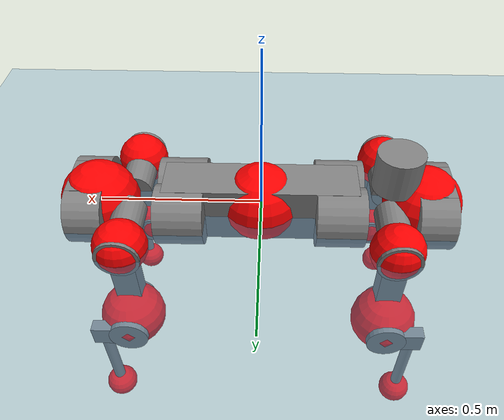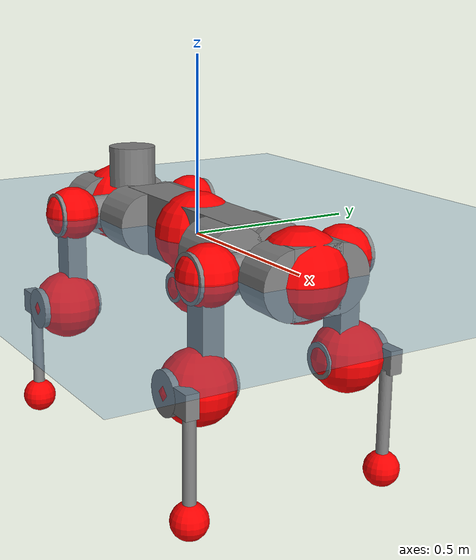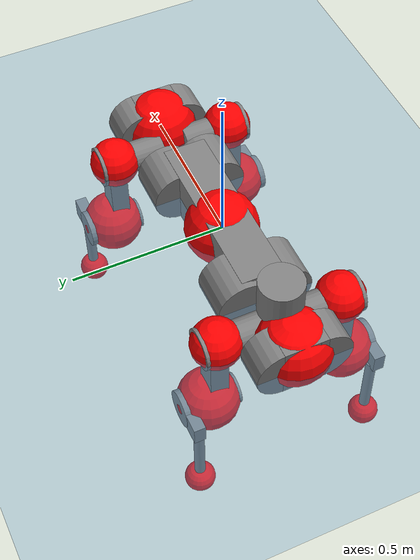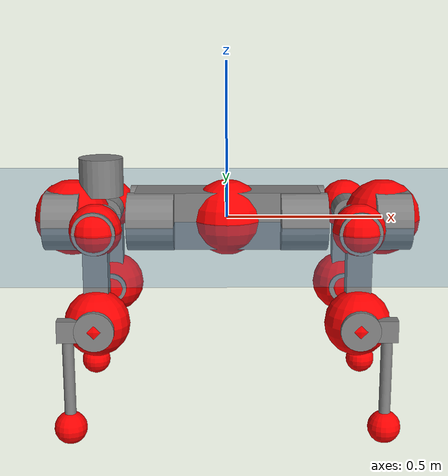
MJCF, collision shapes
<mujoco model="anymal_c">
  <compiler angle="radian" assetdir="assets" balanceinertia="true" inertiafromgeom="false"/>

  <option timestep="0.005" density="1.2" viscosity="2e-05"/>

  <size nkey="1"/>

  <visual>
    <quality shadowsize="8192"/>
    <map shadowclip="0.5"/>
  </visual>

  <default>
    <default class="/">
      <material specular="0" shininess="0.25"/>
      <geom contype="0" conaffinity="0" group="1" solref="-1000 -80"/>
      <site size="0.01 0.005 0.005" group="5"/>
      <general forcelimited="true" forcerange="-80 80" biastype="affine" gainprm="80" biasprm="0 -80 -2"/>
      <default class="anymal_c">
        <joint armature="0.01" damping="0.01" frictionloss="0.1"/>
        <default class="visual">
          <geom type="mesh" group="2"/>
          <default class="visual_zflip"/>
        </default>
        <default class="collision">
          <geom type="cylinder" group="3"/>
          <default class="foot">
            <geom size="0.03 0 0" type="sphere" condim="6" priority="1" friction="0.8 0.02 0.01" solimp="0.015 1 0.03"/>
          </default>
        </default>
      </default>
      <default class="reward_collision_sphere">
        <geom group="5" rgba="1 0 0 1"/>
      </default>
    </default>
  </default>

  <asset>
    <texture type="skybox" colorspace="auto" name="//unnamed_texture_0" builtin="gradient" rgb1="0.95 0.95 0.95" rgb2="0.95 0.95 0.95" width="100" height="600"/>
    <texture type="2d" colorspace="auto" name="texplane" builtin="checker" rgb1="0.345 0.575 0.748" rgb2="0.345 0.575 0.748" markrgb="1 1 1" width="512" height="512"/>
    <texture type="2d" colorspace="linear" name="base" file="base.png"/>
    <texture type="2d" colorspace="linear" name="top_shell" file="top_shell.png"/>
    <texture type="2d" colorspace="linear" name="bottom_shell" file="bottom_shell.png"/>
    <texture type="2d" colorspace="linear" name="remote" file="remote.png"/>
    <texture type="2d" colorspace="linear" name="hatch" file="hatch.png"/>
    <texture type="2d" colorspace="linear" name="handle" file="handle.png"/>
    <texture type="2d" colorspace="linear" name="face" file="face.png"/>
    <texture type="2d" colorspace="linear" name="battery" file="battery.png"/>
    <texture type="2d" colorspace="linear" name="lidar_cage" file="lidar_cage.png"/>
    <texture type="2d" colorspace="linear" name="depth_camera" file="depth_camera.png"/>
    <texture type="2d" colorspace="linear" name="wide_angle_camera" file="wide_angle_camera.png"/>
    <texture type="2d" colorspace="linear" name="lidar" file="lidar.png"/>
    <texture type="2d" colorspace="linear" name="drive" file="drive.png"/>
    <texture type="2d" colorspace="linear" name="hip_l" file="hip_l.png"/>
    <texture type="2d" colorspace="linear" name="shank_l" file="shank_l.png"/>
    <texture type="2d" colorspace="linear" name="foot" file="foot.png"/>
    <texture type="2d" colorspace="linear" name="thigh" file="thigh.png"/>
    <texture type="2d" colorspace="linear" name="shank_r" file="shank_r.png"/>
    <texture type="2d" colorspace="linear" name="hip_r" file="hip_r.png"/>
    <material name="MatPlane" class="/" texture="texplane" texuniform="true" texrepeat="2 2" specular="0.9" shininess="0.5"/>
    <material name="black_plastic" class="/" rgba="0.007 0.007 0.007 1"/>
    <material name="green" class="/" rgba="0.052 0.178 0.033 1"/>
    <material name="red" class="/" rgba="0.178 0.006 0.005 1"/>
    <material name="yellow" class="/" rgba="0.178 0.119 0.006 1"/>
    <material name="lwl" class="/" rgba="0.8 0.8 0.8 1"/>
    <material name="base" class="/" texture="base"/>
    <material name="top_shell" class="/" texture="top_shell"/>
    <material name="bottom_shell" class="/" texture="bottom_shell"/>
    <material name="hip_l" class="/" texture="hip_l"/>
    <material name="thigh" class="/" texture="thigh"/>
    <material name="shank_l" class="/" texture="shank_l"/>
    <material name="foot" class="/" texture="foot"/>
    <material name="hip_r" class="/" texture="hip_r"/>
    <material name="shank" class="/" texture="shank_r"/>
    <material name="hatch" class="/" texture="hatch"/>
    <material name="remote" class="/" texture="remote"/>
    <material name="handle" class="/" texture="handle"/>
    <material name="face" class="/" texture="face"/>
    <material name="depth_camera" class="/" texture="depth_camera"/>
    <material name="wide_angle_camera" class="/" texture="wide_angle_camera"/>
    <material name="battery" class="/" texture="battery"/>
    <material name="lidar_cage" class="/" texture="lidar_cage"/>
    <material name="lidar" class="/" texture="lidar"/>
    <material name="drive" class="/" texture="drive"/>
    <mesh name="base_0" class="/" file="base_0.obj"/>
    <mesh name="base_1" class="/" file="base_1.obj"/>
    <mesh name="base_2" class="/" file="base_2.obj"/>
    <mesh name="base_3" class="/" file="base_3.obj"/>
    <mesh name="base_4" class="/" file="base_4.obj"/>
    <mesh name="base_5" class="/" file="base_5.obj"/>
    <mesh name="top_shell" class="/" file="top_shell.obj"/>
    <mesh name="bottom_shell" class="/" file="bottom_shell.obj"/>
    <mesh name="remote" class="/" file="remote.obj"/>
    <mesh name="handle" class="/" file="handle.obj"/>
    <mesh name="face" class="/" file="face.obj"/>
    <mesh name="wide_angle_camera" class="/" file="wide_angle_camera.obj"/>
    <mesh name="depth_camera" class="/" file="depth_camera.obj"/>
    <mesh name="battery" class="/" file="battery.obj"/>
    <mesh name="lidar_cage" class="/" file="lidar_cage.obj"/>
    <mesh name="lidar" class="/" file="lidar.obj"/>
    <mesh name="drive" class="/" file="drive.obj"/>
    <mesh name="hip_l" class="/" file="hip_l.obj"/>
    <mesh name="thigh" class="/" file="thigh.obj"/>
    <mesh name="shank_l" class="/" file="shank_l.obj"/>
    <mesh name="foot" class="/" file="foot.obj"/>
    <mesh name="hip_r" class="/" file="hip_r.obj"/>
    <mesh name="hatch" class="/" file="hatch.obj"/>
    <mesh name="shank_r" class="/" file="shank_r.obj"/>
  </asset>

  <worldbody>
    <geom name="floor" class="/" size="100 100 0.125" type="plane" group="0" material="MatPlane"/>
    <light name="toplight_shadow" class="/" pos="0 0 5" dir="0.0990148 0.0990148 -0.990148" type="directional" ambient="0.04 0.04 0.04" diffuse="0.55 0.55 0.55" specular="0.12 0.12 0.12"/>
    <light name="toplight_fill" class="/" pos="0 0 5" dir="0.0990148 0.0990148 -0.990148" type="directional" castshadow="false" ambient="0.04 0.04 0.04" diffuse="0.3 0.3 0.3" specular="0.08 0.08 0.08"/>
    <body name="trunk" childclass="anymal_c" pos="0.00247143 -0.000538035 0.000502313" quat="0.999999 -0.00100425 -0.000263121 -0.000391834">
      <inertial pos="0.000176929 -0.000737175 0.0498986" quat="0.501499 0.4995 0.499629 0.499369" mass="19.0638" diaginertia="1.06499 0.436247 0.207628"/>
      <joint name="//unnamed_joint_0" type="free" armature="0" damping="0" frictionloss="0"/>
      <geom name="//unnamed_geom_1" class="visual" material="green" mesh="base_0"/>
      <geom name="//unnamed_geom_2" class="visual" material="yellow" mesh="base_1"/>
      <geom name="//unnamed_geom_3" class="visual" material="red" mesh="base_2"/>
      <geom name="//unnamed_geom_4" class="visual" material="black_plastic" mesh="base_3"/>
      <geom name="//unnamed_geom_5" class="visual" material="lwl" mesh="base_4"/>
      <geom name="//unnamed_geom_6" class="visual" material="base" mesh="base_5"/>
      <geom name="trunk_1" class="collision" size="0.293622 0.0708742 0.091124" type="box"/>
      <geom name="trunk_2" class="collision" size="0.091124 0.0734055" pos="0.241301 0.0652873 0" quat="0.707107 0 0.707107 0"/>
      <geom name="trunk_3" class="collision" size="0.091124 0.0734055" pos="-0.241301 0.0652873 0" quat="0.707107 0 0.707107 0"/>
      <geom name="trunk_4" class="collision" size="0.091124 0.0734055" pos="0.241301 -0.0652873 0" quat="0.707107 0 0.707107 0"/>
      <geom name="trunk_5" class="collision" size="0.091124 0.0734055" pos="-0.241301 -0.0652873 0" quat="0.707107 0 0.707107 0"/>
      <geom name="//unnamed_geom_12" class="visual" material="top_shell" mesh="top_shell"/>
      <geom name="//unnamed_geom_13" class="visual" material="bottom_shell" mesh="bottom_shell"/>
      <geom name="//unnamed_geom_14" class="visual" material="remote" mesh="remote"/>
      <geom name="//unnamed_geom_15" class="visual" material="handle" mesh="handle"/>
      <geom name="//unnamed_geom_16" class="visual" pos="0.459859 0 0" quat="1 0 0 0" material="face" mesh="face"/>
      <geom name="trunk_6" class="collision" size="0.0556869 0.0708742 0.091124" pos="0.520878 0 0" type="box"/>
      <geom name="//unnamed_geom_18" class="collision" size="0.091124 0.0556869" pos="0.520878 0.0652873 0" quat="0.707107 0 0.707107 0"/>
      <geom name="//unnamed_geom_19" class="collision" size="0.091124 0.0556869" pos="0.520878 -0.0652873 0" quat="0.707107 0 0.707107 0"/>
      <geom name="//unnamed_geom_20" class="visual" pos="0.512164 0 -0.0281976" quat="0.965926 0 0.258819 0" material="depth_camera" mesh="depth_camera"/>
      <geom name="//unnamed_geom_21" class="visual" pos="0.569138 0 0.0149006" material="wide_angle_camera" mesh="wide_angle_camera"/>
      <geom name="//unnamed_geom_22" class="visual_zflip" pos="-0.459859 0 0" quat="0 0 0 1" material="face" mesh="face"/>
      <geom name="trunk_7" class="collision" size="0.0556869 0.0708742 0.091124" pos="-0.520878 0 0" quat="0 0 0 1" type="box"/>
      <geom name="//unnamed_geom_24" class="collision" size="0.091124 0.0556869" pos="-0.520878 -0.0652873 0" quat="0 -0.707107 0 0.707107"/>
      <geom name="//unnamed_geom_25" class="collision" size="0.091124 0.0556869" pos="-0.520878 0.0652873 0" quat="0 -0.707107 0 0.707107"/>
      <geom name="//unnamed_geom_26" class="visual" pos="-0.512164 0 -0.0281976" quat="0 -0.258819 0 0.965926" material="depth_camera" mesh="depth_camera"/>
      <geom name="//unnamed_geom_27" class="visual_zflip" pos="-0.569138 0 0.0149006" quat="0 0 0 1" material="wide_angle_camera" mesh="wide_angle_camera"/>
      <geom name="//unnamed_geom_28" class="visual" material="battery" mesh="battery"/>
      <geom name="//unnamed_geom_29" class="visual" pos="0 0.0689882 0.0297822" quat="0.683013 -0.183013 0.183013 0.683013" material="depth_camera" mesh="depth_camera"/>
      <geom name="//unnamed_geom_30" class="visual" pos="0 -0.0689882 0.0297822" quat="0.683013 0.183013 0.183013 -0.683013" material="depth_camera" mesh="depth_camera"/>
      <geom name="//unnamed_geom_31" class="visual" pos="-0.403833 0 0.0731591" quat="1 0 0 0" material="lidar_cage" mesh="lidar_cage"/>
      <geom name="trunk_8" class="collision" size="0.0708742 0.0607494" pos="-0.403833 0 0.132881"/>
      <geom name="//unnamed_geom_33" class="visual" pos="-0.403833 -6.94427e-05 0.14154" quat="0.707107 0 0 -0.707107" material="lidar" mesh="lidar"/>
      <geom name="//unnamed_geom_34" class="visual" pos="0.332718 0.0970205 -1.08134e-09" quat="0.258819 0.965926 0 0" material="drive" mesh="drive"/>
      <geom name="//unnamed_geom_35" class="visual" pos="0.332718 -0.0970205 1.08134e-09" quat="0.258819 -0.965926 0 0" material="drive" mesh="drive"/>
      <geom name="//unnamed_geom_36" class="visual" pos="-0.332718 0.0970205 1.08134e-09" quat="0 0 0.965926 -0.258819" material="drive" mesh="drive"/>
      <geom name="//unnamed_geom_37" class="visual" pos="-0.332718 -0.0970205 -1.08134e-09" quat="0 0 -0.965926 -0.258819" material="drive" mesh="drive"/>
      <geom name="//unnamed_geom_38" class="visual" pos="0.128694 0 0.0726614" quat="1 0 0 0" material="hatch" mesh="hatch"/>
      <geom name="//unnamed_geom_39" class="reward_collision_sphere" size="0.121499"/>
      <geom name="//unnamed_geom_40" class="reward_collision_sphere" size="0.121499" pos="0.499244 0 0"/>
      <geom name="//unnamed_geom_41" class="reward_collision_sphere" size="0.121499" pos="-0.499244 0 0"/>
      <site name="imu" pos="0.273291 0.0074488 0.0565791" size="0.0101249"/>
      <camera name="track" pos="0 -1.86535 0" quat="0.707107 0.707107 0 0" mode="trackcom"/>
      <camera name="ego_camera" pos="0.499244 0 -0.0398145" quat="-0.5 -0.5 0.5 0.5"/>
      <body name="LF_HIP" pos="0.333105 0.0981111 -0.000126915" quat="0.258723 0.965952 0.000364506 8.3244e-05">
        <inertial pos="0.0620972 -0.01498 -0.00824823" quat="-0.129987 0.708918 -0.134606 0.680014" mass="2.87983" diaginertia="0.0100641 0.00343183 0.00320923"/>
        <joint name="LF_HAA" pos="0 0 0" axis="0.999893 0.0146153 0.000945169" range="-0.67102 0.484603" armature="0.0100237" damping="0.00827158" frictionloss="0.102335"/>
        <geom name="//unnamed_geom_42" class="visual" pos="0 -6.36104e-05 1.0448e-05" quat="0.258819 -0.965926 0 0" material="hip_l" mesh="hip_l"/>
        <geom name="//unnamed_geom_43" class="visual" pos="0.0664549 -0.0782193 -0.0456236" quat="0.183013 -0.683013 0.683013 0.183013" material="drive" mesh="drive"/>
        <geom name="//unnamed_geom_44" class="collision" size="0.0506245 0.0708742" pos="0.0664549 -0.0111546 -0.00687297" quat="-0.353553 -0.612372 0.612372 -0.353553"/>
        <body name="LF_THIGH" pos="0.0665106 -0.0673386 -0.0420327" quat="0.182567 -0.683559 0.682692 0.182613">
          <inertial pos="0.0355189 -0.000410748 -0.246703" quat="0.993156 -0.00488404 -0.0807904 0.0842002" mass="3.1218" diaginertia="0.0498781 0.020941 0.00415698"/>
          <joint name="LF_HFE" pos="0 0 0" axis="0.999994 -0.00319336 0.00102569" range="-3.15823 3.13496" armature="0.0105089" damping="0.00731445" frictionloss="0.106403"/>
          <geom name="//unnamed_geom_45" class="visual" pos="0.00351675 5.54158e-06 0" quat="0.707107 0 0 -0.707107" material="thigh" mesh="thigh"/>
          <geom name="//unnamed_geom_46" class="collision" size="0.0658118 0.0404996" pos="0.0443773 0 0" quat="0.5 0.5 -0.5 -0.5"/>
          <geom name="//unnamed_geom_47" class="collision" size="0.0379683 0.0303747 0.143079" pos="0.0332829 0 -0.140658" quat="0.707107 0 0 -0.707107" type="box"/>
          <geom name="//unnamed_geom_48" class="visual" pos="0.111276 0 -0.283678" quat="1 0 0 0" material="drive" mesh="drive"/>
          <geom name="//unnamed_geom_49" class="collision" size="0.0506245 0.0708742" pos="0.0336158 0 -0.283678" quat="0.707107 0 0.707107 0"/>
          <geom name="//unnamed_geom_50" class="reward_collision_sphere" size="0.0809991" pos="0.0277358 0 0"/>
          <body name="LF_SHANK" pos="0.111333 -0.0025656 -0.283485" quat="1 6.28342e-05 5.17801e-05 -0.00029732">
            <inertial pos="0.00442134 -0.0569576 -0.0795646" quat="0.99334 -0.112292 0.00152153 -0.0257508" mass="0.610261" diaginertia="0.0175685 0.00676911 0.00111325"/>
            <joint name="LF_KFE" pos="0 0 0" axis="0.999992 0.00300716 0.00272655" range="-3.18382 3.14788" armature="0.0100165" damping="0" frictionloss="0.100214"/>
            <geom name="//unnamed_geom_51" class="visual" pos="0.00114674 0.00611445 0" quat="0.707107 0 0 -0.707107" material="shank_l" mesh="shank_l"/>
            <geom name="LF_kfe_act" class="collision" size="0.0607494 0.0202498" pos="0.0221886 0 0" quat="0.5 0.5 -0.5 -0.5"/>
            <geom name="//unnamed_geom_53" class="collision" size="0.0582171 0.0341715 0.0192373" pos="0.0221886 -0.0536279 0" quat="0.5 0.5 -0.5 -0.5" type="box"/>
            <geom name="//unnamed_geom_54" class="visual" pos="0.0144778 -0.0800583 -0.336402" quat="0.382683 0 0 -0.92388" material="foot" mesh="foot"/>
            <geom name="LF_calf" class="collision" size="0.0177186 0.143016" pos="0.0144781 -0.0820288 -0.168201" quat="0.707107 0 0 -0.707107"/>
            <geom name="LF_foot" class="foot" size="0.0336417" pos="0.0144781 -0.0820288 -0.314007" quat="0.707107 0 0 -0.707107"/>
            <geom name="//unnamed_geom_57" class="reward_collision_sphere" size="0.101249" pos="-0.0554716 0 0"/>
            <geom name="//unnamed_geom_58" class="reward_collision_sphere" size="0.0506245" pos="0.0144781 -0.0820288 -0.314007"/>
            <site name="LF_foot" class="foot" pos="0.0144781 -0.0820288 -0.314007" quat="0.707107 0 0 -0.707107" size="0.0101249"/>
          </body>
        </body>
      </body>
      <body name="RF_HIP" pos="0.33301 -0.0972966 -0.00204743" quat="0.259565 -0.965726 -0.000370738 0.000109753">
        <inertial pos="0.0628024 0.0128192 -0.00854544" quat="0.129633 0.680507 0.134166 0.708594" mass="2.86058" diaginertia="0.00968949 0.00347054 0.00318966"/>
        <joint name="RF_HAA" pos="0 0 0" axis="0.999996 -0.00201295 0.00179469" range="-0.513316 0.718635" armature="0.00964959" damping="0.0137546" frictionloss="0.0921386"/>
        <geom name="//unnamed_geom_59" class="visual" pos="0 6.36099e-05 1.04479e-05" quat="0.258819 0.965926 0 0" material="hip_r" mesh="hip_r"/>
        <geom name="//unnamed_geom_60" class="visual" pos="0.0664549 0.0782193 -0.0456236" quat="0.183013 0.683013 0.683013 -0.183013" material="drive" mesh="drive"/>
        <geom name="//unnamed_geom_61" class="collision" size="0.0506245 0.0708742" pos="0.0664549 0.0111546 -0.00687297" quat="-0.353553 0.612372 0.612372 0.353553"/>
        <body name="RF_THIGH" pos="0.0668609 0.0649492 -0.0422563" quat="0.183085 0.683114 0.682877 -0.183068">
          <inertial pos="0.034311 -0.00139042 -0.244836" quat="0.992776 -0.00421617 -0.0785186 0.0906232" mass="3.2201" diaginertia="0.0507736 0.0214803 0.00419725"/>
          <joint name="RF_HFE" pos="0 0 0" axis="1 -9.88674e-05 -8.32785e-05" range="-3.14395 3.17127" armature="0.010163" damping="0.0130821" frictionloss="0.0978849"/>
          <geom name="//unnamed_geom_62" class="visual" pos="0.00351675 5.54158e-06 0" quat="0.707107 0 0 -0.707107" material="thigh" mesh="thigh"/>
          <geom name="//unnamed_geom_63" class="collision" size="0.0658118 0.0404996" pos="0.0443773 0 0" quat="0.5 0.5 0.5 0.5"/>
          <geom name="//unnamed_geom_64" class="collision" size="0.0379683 0.0303747 0.143079" pos="0.0332829 0 -0.140658" quat="0.707107 0 0 0.707107" type="box"/>
          <geom name="//unnamed_geom_65" class="visual" pos="0.111276 0 -0.283678" quat="1 0 0 0" material="drive" mesh="drive"/>
          <geom name="//unnamed_geom_66" class="collision" size="0.0506245 0.0708742" pos="0.0336158 0 -0.283678" quat="0.707107 0 0.707107 0"/>
          <geom name="//unnamed_geom_67" class="reward_collision_sphere" size="0.0809991" pos="0.0277358 0 0"/>
          <body name="RF_SHANK" pos="0.111345 -0.00124132 -0.282806" quat="1 -2.4703e-05 -1.4652e-06 3.63901e-05">
            <inertial pos="0.00633669 0.0576655 -0.0804748" quat="0.993537 0.108703 -0.00208796 0.0326258" mass="0.608431" diaginertia="0.0171116 0.0065159 0.00107913"/>
            <joint name="RF_KFE" pos="0 0 0" axis="0.999976 0.00694858 0.000602986" range="-3.12557 3.15471" armature="0.0106228" damping="0.0151852" frictionloss="0.105546"/>
            <geom name="//unnamed_geom_68" class="visual" pos="0.00114673 -0.00611444 0" quat="0.707107 0 0 0.707107" material="shank" mesh="shank_r"/>
            <geom name="RF_kfe_act" class="collision" size="0.0607494 0.0202498" pos="0.0221886 0 0" quat="0.5 0.5 0.5 0.5"/>
            <geom name="//unnamed_geom_70" class="collision" size="0.0582171 0.0341715 0.0192373" pos="0.0221886 0.0536279 0" quat="0.5 0.5 0.5 0.5" type="box"/>
            <geom name="//unnamed_geom_71" class="visual" pos="0.0144784 0.0800583 -0.336402" quat="0.382683 0 0 0.92388" material="foot" mesh="foot"/>
            <geom name="RF_calf" class="collision" size="0.0177186 0.143016" pos="0.0144781 0.0820288 -0.168201" quat="0.707107 0 0 0.707107"/>
            <geom name="RF_foot" class="foot" size="0.0287369" pos="0.0144781 0.0820288 -0.314007" quat="0.707107 0 0 0.707107"/>
            <geom name="//unnamed_geom_74" class="reward_collision_sphere" size="0.101249" pos="-0.0554716 0 0"/>
            <geom name="//unnamed_geom_75" class="reward_collision_sphere" size="0.0506245" pos="0.0144781 0.0820288 -0.314007"/>
            <site name="RF_foot" class="foot" pos="0.0144781 0.0820288 -0.314007" quat="0.707107 0 0 0.707107" size="0.0101249"/>
          </body>
        </body>
      </body>
      <body name="LH_HIP" pos="-0.331962 0.0973751 2.83529e-05" quat="6.61885e-06 0.000159105 0.965924 -0.258825">
        <inertial pos="0.062081 0.0163226 -0.00951424" quat="0.131576 0.673789 0.11992 0.717158" mass="2.94494" diaginertia="0.00983507 0.00344905 0.00327464"/>
        <joint name="LH_HAA" pos="0 0 0" axis="0.999997 0.00229759 0.00109763" range="-0.494204 0.719624" armature="0.00934002" damping="0.0155123" frictionloss="0.111628"/>
        <geom name="//unnamed_geom_76" class="visual" pos="0 6.36099e-05 1.04479e-05" quat="-0.258819 -0.965926 0 0" material="hip_r" mesh="hip_r"/>
        <geom name="//unnamed_geom_77" class="visual" pos="0.0664549 0.0782193 -0.0456236" quat="0.183013 0.683013 0.683013 -0.183013" material="drive" mesh="drive"/>
        <geom name="//unnamed_geom_78" class="collision" size="0.0506245 0.0708742" pos="0.0664549 0.0111546 -0.00687297" quat="-0.353553 0.612372 0.612372 0.353553"/>
        <body name="LH_THIGH" pos="0.0655865 0.0654791 -0.0407529" quat="0.183024 0.682956 0.68306 -0.18304">
          <inertial pos="0.0341465 -0.000121751 -0.244595" quat="0.9927 -0.000225057 -0.080865 0.089482" mass="3.24037" diaginertia="0.0504084 0.0207895 0.00407024"/>
          <joint name="LH_HFE" pos="0 0 0" axis="1 0.000231283 -2.03724e-06" range="-3.13316 3.15127" armature="0.0107271" damping="0.00848078" frictionloss="0.101862"/>
          <geom name="//unnamed_geom_79" class="visual" pos="0.00351675 5.54158e-06 0" quat="0.707107 0 0 -0.707107" material="thigh" mesh="thigh"/>
          <geom name="//unnamed_geom_80" class="collision" size="0.0658118 0.0404996" pos="0.0443773 0 0" quat="0.5 0.5 -0.5 -0.5"/>
          <geom name="//unnamed_geom_81" class="collision" size="0.0379683 0.0303747 0.143079" pos="0.0332829 0 -0.140658" quat="0.707107 0 0 -0.707107" type="box"/>
          <geom name="//unnamed_geom_82" class="visual" pos="0.111276 0 -0.283678" quat="1 0 0 0" material="drive" mesh="drive"/>
          <geom name="//unnamed_geom_83" class="collision" size="0.0506245 0.0708742" pos="0.0336158 0 -0.283678" quat="0.707107 0 0.707107 0"/>
          <geom name="//unnamed_geom_84" class="reward_collision_sphere" size="0.0809991" pos="0.0277358 0 0"/>
          <body name="LH_SHANK" pos="0.111429 -0.000946841 -0.28558" quat="1 0.000159876 0.00012264 9.91508e-05">
            <inertial pos="0.00709904 0.05942 -0.0796995" quat="0.992845 0.116524 -0.00109794 0.0260719" mass="0.602285" diaginertia="0.0168754 0.00647245 0.00104655"/>
            <joint name="LH_KFE" pos="0 0 0" axis="0.999996 -0.000992391 0.00274623" range="-3.14634 3.12772" armature="0.0101466" damping="0.00507733" frictionloss="0.113257"/>
            <geom name="//unnamed_geom_85" class="visual" pos="0.00114673 -0.00611444 0" quat="-0.707107 0 0 -0.707107" material="shank" mesh="shank_r"/>
            <geom name="LH_kfe_act" class="collision" size="0.0607494 0.0202498" pos="0.0221886 0 0" quat="0.5 0.5 -0.5 -0.5"/>
            <geom name="//unnamed_geom_87" class="collision" size="0.0582171 0.0341715 0.0192373" pos="0.0221886 0.0536279 0" quat="0.5 0.5 -0.5 -0.5" type="box"/>
            <geom name="//unnamed_geom_88" class="visual" pos="0.0144784 0.0800583 -0.336402" quat="-0.382683 0 0 -0.92388" material="foot" mesh="foot"/>
            <geom name="LH_calf" class="collision" size="0.0177186 0.143016" pos="0.0144781 0.0820288 -0.168201" quat="0.707107 0 0 -0.707107"/>
            <geom name="LH_foot" class="foot" size="0.031756" pos="0.0144781 0.0820288 -0.314007" quat="0.707107 0 0 -0.707107"/>
            <geom name="//unnamed_geom_91" class="reward_collision_sphere" size="0.101249" pos="-0.0554716 0 0"/>
            <geom name="//unnamed_geom_92" class="reward_collision_sphere" size="0.0506245" pos="0.0144781 0.0820288 -0.314007"/>
            <site name="LH_foot" class="foot" pos="0.0144781 0.0820288 -0.314007" quat="0.707107 0 0 -0.707107" size="0.0101249"/>
          </body>
        </body>
      </body>
      <body name="RH_HIP" pos="-0.33366 -0.0973845 -0.000797279" quat="-0.000801657 0.000858963 -0.96598 -0.258615">
        <inertial pos="0.0652539 -0.0132343 -0.0108756" quat="-0.124334 0.708373 -0.134954 0.681569" mass="2.89342" diaginertia="0.00990441 0.0034762 0.00320224"/>
        <joint name="RH_HAA" pos="0 0 0" axis="0.99991 -0.013353 0.00138364" range="-0.743468 0.489384" armature="0.0103535" damping="0.0101591" frictionloss="0.099253"/>
        <geom name="//unnamed_geom_93" class="visual" pos="0 -6.36104e-05 1.0448e-05" quat="-0.258819 0.965926 0 0" material="hip_l" mesh="hip_l"/>
        <geom name="//unnamed_geom_94" class="visual" pos="0.0664549 -0.0782193 -0.0456236" quat="-0.183013 0.683013 -0.683013 -0.183013" material="drive" mesh="drive"/>
        <geom name="//unnamed_geom_95" class="collision" size="0.0506245 0.0708742" pos="0.0664549 -0.0111546 -0.00687297" quat="0.353553 0.612372 -0.612372 0.353553"/>
        <body name="RH_THIGH" pos="0.0671673 -0.0683485 -0.0443083" quat="-0.183015 0.682978 -0.683073 -0.182915">
          <inertial pos="0.0340185 4.23176e-06 -0.244451" quat="0.993109 -0.00498208 -0.0798639 0.0856252" mass="3.1102" diaginertia="0.0508983 0.0212364 0.00409278"/>
          <joint name="RH_HFE" pos="0 0 0" axis="0.999999 -9.31838e-05 -0.00171708" range="-3.1435 3.18308" armature="0.00989249" damping="0.00703194" frictionloss="0.0990839"/>
          <geom name="//unnamed_geom_96" class="visual" pos="0.00351675 5.54158e-06 0" quat="0.707107 0 0 -0.707107" material="thigh" mesh="thigh"/>
          <geom name="//unnamed_geom_97" class="collision" size="0.0658118 0.0404996" pos="0.0443773 0 0" quat="0.5 0.5 0.5 0.5"/>
          <geom name="//unnamed_geom_98" class="collision" size="0.0379683 0.0303747 0.143079" pos="0.0332829 0 -0.140658" quat="0.707107 0 0 0.707107" type="box"/>
          <geom name="//unnamed_geom_99" class="visual" pos="0.111276 0 -0.283678" quat="1 0 0 0" material="drive" mesh="drive"/>
          <geom name="//unnamed_geom_100" class="collision" size="0.0506245 0.0708742" pos="0.0336158 0 -0.283678" quat="0.707107 0 0.707107 0"/>
          <geom name="//unnamed_geom_101" class="reward_collision_sphere" size="0.0809991" pos="0.0277358 0 0"/>
          <body name="RH_SHANK" pos="0.111237 0.000706614 -0.283655" quat="1 -3.96521e-08 7.60913e-06 6.23408e-06">
            <inertial pos="0.00508679 -0.0569069 -0.0802473" quat="0.992937 -0.115789 -0.00110938 -0.0258486" mass="0.604898" diaginertia="0.0168356 0.00649378 0.00111269"/>
            <joint name="RH_KFE" pos="0 0 0" axis="0.999911 0.00322336 -0.0129165" stiffness="0.00068804" range="-3.11277 3.14204" armature="0.0106394" damping="0.0177274" frictionloss="0.106095"/>
            <geom name="//unnamed_geom_102" class="visual" pos="0.00114674 0.00611445 0" quat="0.707107 0 0 -0.707107" material="shank_l" mesh="shank_l"/>
            <geom name="RH_kfe_act" class="collision" size="0.0607494 0.0202498" pos="0.0221886 0 0" quat="0.5 0.5 0.5 0.5"/>
            <geom name="//unnamed_geom_104" class="collision" size="0.0582171 0.0341715 0.0192373" pos="0.0221886 -0.0536279 0" quat="0.5 0.5 0.5 0.5" type="box"/>
            <geom name="//unnamed_geom_105" class="visual" pos="0.0144778 -0.0800583 -0.336402" quat="0.382683 0 0 -0.92388" material="foot" mesh="foot"/>
            <geom name="RH_calf" class="collision" size="0.0177186 0.143016" pos="0.0144781 -0.0820288 -0.168201" quat="0.707107 0 0 0.707107"/>
            <geom name="RH_foot" class="foot" size="0.0273607" pos="0.0144781 -0.0820288 -0.314007" quat="0.707107 0 0 0.707107"/>
            <geom name="//unnamed_geom_108" class="reward_collision_sphere" size="0.101249" pos="-0.0554716 0 0"/>
            <geom name="//unnamed_geom_109" class="reward_collision_sphere" size="0.0506245" pos="0.0144781 -0.0820288 -0.314007"/>
            <site name="RH_foot" class="foot" pos="0.0144781 -0.0820288 -0.314007" quat="0.707107 0 0 0.707107" size="0.0101249"/>
          </body>
        </body>
      </body>
    </body>
  </worldbody>

  <contact>
    <pair class="/" geom1="floor" geom2="LF_foot" name="//unnamed_contact_0"/>
    <pair class="/" geom1="floor" geom2="RF_foot" name="//unnamed_contact_1"/>
    <pair class="/" geom1="floor" geom2="LH_foot" name="//unnamed_contact_2"/>
    <pair class="/" geom1="floor" geom2="RH_foot" name="//unnamed_contact_3"/>
  </contact>

  <actuator>
    <general name="LF_HAA" class="/" joint="LF_HAA" forcerange="-81.1963 81.1963" gainprm="80.006" biasprm="0 -80.006 -1.95672"/>
    <general name="LF_HFE" class="/" joint="LF_HFE" forcerange="-81.659 81.659" gainprm="80.006" biasprm="0 -80.006 -1.95672"/>
    <general name="LF_KFE" class="/" joint="LF_KFE" forcerange="-79.8766 79.8766" gainprm="80.006" biasprm="0 -80.006 -1.95672"/>
    <general name="RF_HAA" class="/" joint="RF_HAA" forcerange="-82.1732 82.1732" gainprm="80.006" biasprm="0 -80.006 -1.95672"/>
    <general name="RF_HFE" class="/" joint="RF_HFE" forcerange="-82.8174 82.8174" gainprm="80.006" biasprm="0 -80.006 -1.95672"/>
    <general name="RF_KFE" class="/" joint="RF_KFE" forcerange="-80.6001 80.6001" gainprm="80.006" biasprm="0 -80.006 -1.95672"/>
    <general name="LH_HAA" class="/" joint="LH_HAA" forcerange="-88.7218 88.7218" gainprm="80.006" biasprm="0 -80.006 -1.95672"/>
    <general name="LH_HFE" class="/" joint="LH_HFE" forcerange="-83.1267 83.1267" gainprm="80.006" biasprm="0 -80.006 -1.95672"/>
    <general name="LH_KFE" class="/" joint="LH_KFE" forcerange="-75.177 75.177" gainprm="80.006" biasprm="0 -80.006 -1.95672"/>
    <general name="RH_HAA" class="/" joint="RH_HAA" forcerange="-79.9621 79.9621" gainprm="80.006" biasprm="0 -80.006 -1.95672"/>
    <general name="RH_HFE" class="/" joint="RH_HFE" forcerange="-88.3699 88.3699" gainprm="80.006" biasprm="0 -80.006 -1.95672"/>
    <general name="RH_KFE" class="/" joint="RH_KFE" forcerange="-81.4797 81.4797" gainprm="80.006" biasprm="0 -80.006 -1.95672"/>
  </actuator>

  <sensor>
    <gyro site="imu" name="imu_angular_velocity"/>
    <velocimeter site="imu" name="imu_linear_velocity"/>
    <framelinvel objtype="site" objname="LF_foot" name="LF_foot_global_linear_velocity"/>
    <framelinvel objtype="site" objname="RF_foot" name="RF_foot_global_linear_velocity"/>
    <framelinvel objtype="site" objname="LH_foot" name="LH_foot_global_linear_velocity"/>
    <framelinvel objtype="site" objname="RH_foot" name="RH_foot_global_linear_velocity"/>
  </sensor>

  <keyframe>
    <key name="home" qpos="0 0 0.55 1 0 0 0 0 0.4 -0.8 0 -0.4 0.8 0 -0.4 0.8 0 0.4 -0.8"/>
  </keyframe>
</mujoco>
